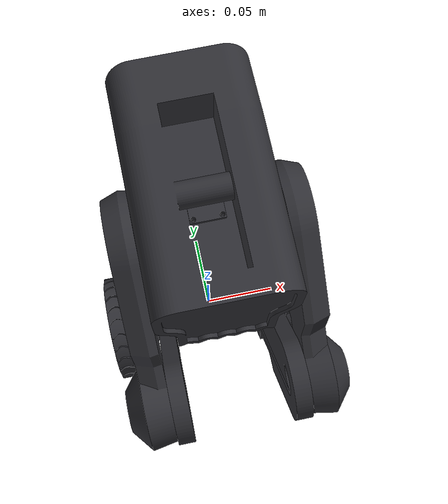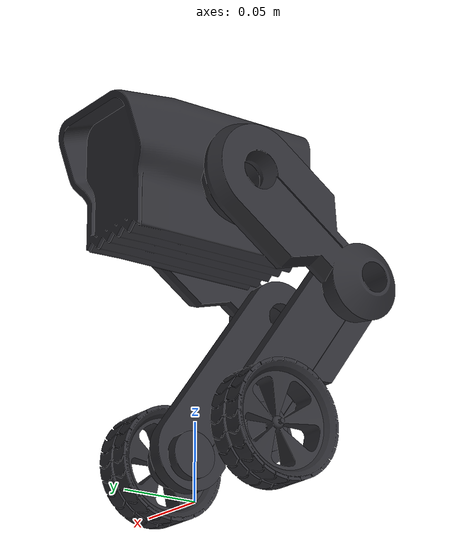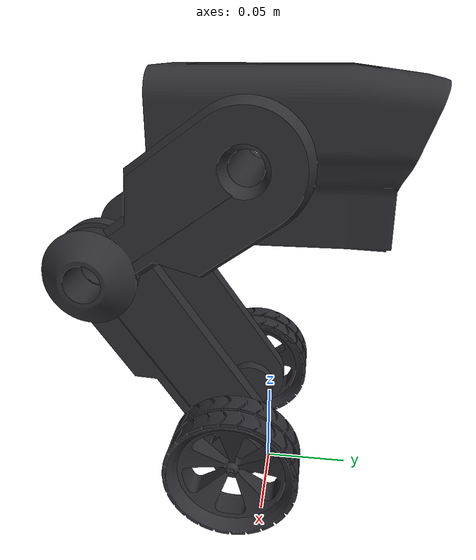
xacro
<?xml version="1.0" ?>
<robot name="Biped_bot_1" xmlns:xacro="http://www.ros.org/wiki/xacro">

<xacro:arg name="is_ignition" default="true"/>

<!-- Load Simulated or Real Hardware Interfaces -->
<xacro:arg name="is_sim" default="true"/>

<!-- Include Gazebo Parameters -->
<xacro:include filename="$(find bipedbot_description)/urdf/bipedbot_gazebo.xacro" />

<!-- Include ros2_control Plugins -->
<xacro:include filename="$(find bipedbot_description)/urdf/bipedbot_ros2_control.xacro" />

<!-- Greyish-black material for all visuals -->
<material name="grey_black">
  <color rgba="0.18 0.18 0.2 1.0"/>
</material>

<link name="base_footprint"/>

<!-- ========================= base_link ========================= -->
<link name="base_link">
  <inertial>
    <origin xyz="3.180981950978574e-05 0.0018828231312234408 0.20026420610273285" rpy="0 0 0"/>
    <mass value="0.6871364009577915"/>
    <inertia ixx="0.001278" iyy="0.000754" izz="0.001226" ixy="0.0" iyz="-9e-06" ixz="0.0"/>
  </inertial>
  <visual>
    <origin xyz="0 0 0" rpy="0 0 0"/>
    <geometry>
      <mesh filename="package://bipedbot_description/meshes/base_link.stl" scale="0.001 0.001 0.001"/>
    </geometry>
    <material name="grey_black"/>
  </visual>
  <collision>
    <origin xyz="0.0000 0.0107 0.1998" rpy="-1.5649 0.0000 3.1416"/>
    <geometry>
      <box size="0.0875 0.0907 0.1418"/>
    </geometry>
  </collision>
</link>

<!-- ========================= legs ========================= -->
<link name="right_top_leg_1">
  <inertial>
    <origin xyz="0.008146638140999245 -0.0344919738468972 -0.024151554062895847" rpy="0 0 0"/>
    <mass value="0.11765454158339926"/>
    <inertia ixx="0.000238" iyy="9.2e-05" izz="0.000152" ixy="5e-06" iyz="-8.2e-05" ixz="4e-06"/>
  </inertial>
  <visual>
    <origin xyz="-0.04 0.01 -0.199931" rpy="0 0 0"/>
    <geometry>
      <mesh filename="package://bipedbot_description/meshes/right_top_leg_1.stl" scale="0.001 0.001 0.001"/>
    </geometry>
    <material name="grey_black"/>
  </visual>
  <collision>
    <origin xyz="0.0125 -0.0365 -0.0256" rpy="-2.1817 0.0000 -3.1416"/>
    <geometry>
      <box size="0.0250 0.0668 0.1560"/>
    </geometry>
  </collision>
</link>

<link name="right_bottom_leg_1">
  <inertial>
    <origin xyz="-0.0049999999999989775 0.03342953324706922 -0.04524843328414291" rpy="0 0 0"/>
    <mass value="0.06694057104242657"/>
    <inertia ixx="0.000154" iyy="9.6e-05" izz="5.9e-05" ixy="0.0" iyz="6e-05" ixz="-0.0"/>
  </inertial>
  <visual>
    <origin xyz="-0.04 0.089867 -0.144007" rpy="0 0 0"/>
    <geometry>
      <mesh filename="package://bipedbot_description/meshes/right_bottom_leg_1.stl" scale="0.001 0.001 0.001"/>
    </geometry>
    <material name="grey_black"/>
  </visual>
  <collision>
    <origin xyz="-0.0050 0.0358 -0.0512" rpy="0.6109 0.0000 0.0000"/>
    <geometry>
      <box size="0.0100 0.0500 0.1750"/>
    </geometry>
  </collision>
</link>

<link name="left_top_leg_1">
  <inertial>
    <origin xyz="-0.008170600100975561 -0.03442394876428098 -0.024103922387621074" rpy="0 0 0"/>
    <mass value="0.11806434962739475"/>
    <inertia ixx="0.000239" iyy="9.3e-05" izz="0.000153" ixy="-5e-06" iyz="-8.3e-05" ixz="-4e-06"/>
  </inertial>
  <visual>
    <origin xyz="0.04 0.01 -0.199931" rpy="0 0 0"/>
    <geometry>
      <mesh filename="package://bipedbot_description/meshes/left_top_leg_1.stl" scale="0.001 0.001 0.001"/>
    </geometry>
    <material name="grey_black"/>
  </visual>
  <collision>
    <origin xyz="-0.0125 -0.0365 -0.0256" rpy="-2.1817 0.0000 -3.1416"/>
    <geometry>
      <box size="0.0250 0.0668 0.1560"/>
    </geometry>
  </collision>
</link>

<link name="left_bottom_leg_1">
  <inertial>
    <origin xyz="0.004999999999999165 0.0334295332470692 -0.04524843328414298" rpy="0 0 0"/>
    <mass value="0.06694057104242657"/>
    <inertia ixx="0.000154" iyy="9.6e-05" izz="5.9e-05" ixy="-0.0" iyz="6e-05" ixz="0.0"/>
  </inertial>
  <visual>
    <origin xyz="0.04 0.089867 -0.144007" rpy="0 0 0"/>
    <geometry>
      <mesh filename="package://bipedbot_description/meshes/left_bottom_leg_1.stl" scale="0.001 0.001 0.001"/>
    </geometry>
    <material name="grey_black"/>
  </visual>
  <collision>
    <origin xyz="0.0050 0.0358 -0.0512" rpy="0.6109 0.0000 0.0000"/>
    <geometry>
      <box size="0.0100 0.0500 0.1750"/>
    </geometry>
  </collision>
</link>

<!-- ========================= motors ========================= -->
<link name="right_motor_1">
  <inertial>
    <origin xyz="0.002611940298508038 -3.875925415914444e-07 -4.822695428494117e-07" rpy="0 0 0"/>
    <mass value="0.022590485913617148"/>
    <inertia ixx="3e-06" iyy="3e-06" izz="3e-06" ixy="0.0" iyz="-0.0" ixz="0.0"/>
  </inertial>
  <visual>
    <origin xyz="-0.035 0.015302 -0.037518" rpy="0 0 0"/>
    <geometry>
      <mesh filename="package://bipedbot_description/meshes/right_motor_1.stl" scale="0.001 0.001 0.001"/>
    </geometry>
    <material name="grey_black"/>
  </visual>
  <collision>
    <origin xyz="0.0100 0.0000 0.0000" rpy="1.5708 0.4303 -1.5708"/>
    <geometry>
      <box size="0.0300 0.0300 0.0450"/>
    </geometry>
  </collision>
</link>

<link name="left_motor_1">
  <inertial>
    <origin xyz="-0.002611940298508253 -3.875925402695851e-07 -4.822695418571499e-07" rpy="0 0 0"/>
    <mass value="0.022590485913617148"/>
    <inertia ixx="3e-06" iyy="3e-06" izz="3e-06" ixy="0.0" iyz="-0.0" ixz="0.0"/>
  </inertial>
  <visual>
    <origin xyz="0.035 0.015302 -0.037518" rpy="0 0 0"/>
    <geometry>
      <mesh filename="package://bipedbot_description/meshes/left_motor_1.stl" scale="0.001 0.001 0.001"/>
    </geometry>
    <material name="grey_black"/>
  </visual>
  <collision>
    <origin xyz="-0.0100 0.0000 0.0000" rpy="1.5708 -0.6891 -1.5708"/>
    <geometry>
      <box size="0.0300 0.0300 0.0450"/>
    </geometry>
  </collision>
</link>

<!-- ========================= wheels (no collision, tyres handle contact) ========================= -->
<link name="left_wheel_1">
  <inertial>
    <origin xyz="-3.5058995290215833e-10 -4.003821121052048e-07 -4.778944649383443e-07" rpy="0 0 0"/>
    <mass value="0.02988168724907574"/>
    <inertia ixx="2.1e-05" iyy="1.1e-05" izz="1.1e-05" ixy="0.0" iyz="0.0" ixz="-0.0"/>
  </inertial>
  <visual>
    <origin xyz="0.06 0.015302 -0.037518" rpy="0 0 0"/>
    <geometry>
      <mesh filename="package://bipedbot_description/meshes/left_wheel_1.stl" scale="0.001 0.001 0.001"/>
    </geometry>
    <material name="grey_black"/>
  </visual>
</link>

<link name="right_wheel_1">
  <inertial>
    <origin xyz="-3.5058860675674097e-10 -4.003821121121437e-07 -4.778944651673278e-07" rpy="0 0 0"/>
    <mass value="0.02988168724907574"/>
    <inertia ixx="2.1e-05" iyy="1.1e-05" izz="1.1e-05" ixy="0.0" iyz="0.0" ixz="-0.0"/>
  </inertial>
  <visual>
    <origin xyz="-0.06 0.015302 -0.037518" rpy="0 0 0"/>
    <geometry>
      <mesh filename="package://bipedbot_description/meshes/right_wheel_1.stl" scale="0.001 0.001 0.001"/>
    </geometry>
    <material name="grey_black"/>
  </visual>
</link>

<!-- ========================= IMU (no collision) ========================= -->
<link name="imu_link_1">
  <inertial>
    <origin xyz="-0.00800314775699511 0.005842843639794027 0.0010391859500072376" rpy="0 0 0"/>
    <mass value="0.0006222857790364956"/>
    <inertia ixx="0.0" iyy="0.0" izz="0.0" ixy="0.0" iyz="-0.0" ixz="0.0"/>
  </inertial>
  <visual>
    <origin xyz="-0.008 0.0055 -0.215" rpy="0 0 0"/>
    <geometry>
      <mesh filename="package://bipedbot_description/meshes/imu_link_1.stl" scale="0.001 0.001 0.001"/>
    </geometry>
    <material name="grey_black"/>
  </visual>
</link>

<!-- ========================= tyres (ground contact) ========================= -->
<link name="left_tyre_1">
  <inertial>
    <origin xyz="1.8586576635053198e-05 -3.879422003933569e-07 -4.817137699564267e-07" rpy="0 0 0"/>
    <mass value="0.02747331301180858"/>
    <inertia ixx="3.3e-05" iyy="1.8e-05" izz="1.8e-05" ixy="0.0" iyz="0.0" ixz="-0.0"/>
  </inertial>
  <visual>
    <origin xyz="0.06 0.015302 -0.037518" rpy="0 0 0"/>
    <geometry>
      <mesh filename="package://bipedbot_description/meshes/left_tyre_1.stl" scale="0.001 0.001 0.001"/>
    </geometry>
    <material name="grey_black"/>
  </visual>
  <collision>
    <origin xyz="0 0 0" rpy="0 1.5708 0"/>
    <geometry>
      <cylinder radius="0.037" length="0.0286"/>
    </geometry>
  </collision>
</link>

<link name="right_tyre_1">
  <inertial>
    <origin xyz="1.85865766363022e-05 -3.8794220039682636e-07 -4.817137701784713e-07" rpy="0 0 0"/>
    <mass value="0.02747331301180858"/>
    <inertia ixx="3.3e-05" iyy="1.8e-05" izz="1.8e-05" ixy="0.0" iyz="0.0" ixz="-0.0"/>
  </inertial>
  <visual>
    <origin xyz="-0.06 0.015302 -0.037518" rpy="0 0 0"/>
    <geometry>
      <mesh filename="package://bipedbot_description/meshes/right_tyre_1.stl" scale="0.001 0.001 0.001"/>
    </geometry>
    <material name="grey_black"/>
  </visual>
  <collision>
    <origin xyz="0 0 0" rpy="0 1.5708 0"/>
    <geometry>
      <cylinder radius="0.037" length="0.0286"/>
    </geometry>
  </collision>
</link>

<!-- ========================= joints ========================= -->
<!-- z was 0.033: wheel axle is 0.0375 above base_link and tyre radius is 0.037,
     so with z=0 the tyres sit on the ground. Verify in Gazebo. -->
<joint name="base_joint" type="fixed">
  <parent link="base_footprint"/>
  <child link="base_link" />
  <origin xyz="0 0 0" rpy="0 0 0"/>
</joint>

<!-- Leg joints: planar hip/knee, axes parallel to the wheel axle (x). Limits cover a hip height
     of about 0.09 .. 0.21 m (see analysis/leg_model.py); the controller restricts it further. -->
<joint name="right_top_leg_joint" type="revolute">
  <origin xyz="0.04 -0.01 0.199931" rpy="0 0 0"/>
  <parent link="base_link"/>
  <child link="right_top_leg_1"/>
  <axis xyz="-1.0 0.0 0.0"/>
  <limit lower="-0.70" upper="0.70" effort="2.0" velocity="3.0"/>
</joint>

<joint name="right_bottom_leg_joint" type="revolute">
  <origin xyz="0.0 -0.079867 -0.055924" rpy="0 0 0"/>
  <parent link="right_top_leg_1"/>
  <child link="right_bottom_leg_1"/>
  <axis xyz="1.0 0.0 -0.0"/>
  <limit lower="-0.85" upper="0.85" effort="2.0" velocity="3.0"/>
</joint>

<joint name="left_top_leg_joint" type="revolute">
  <origin xyz="-0.04 -0.01 0.199931" rpy="0 0 0"/>
  <parent link="base_link"/>
  <child link="left_top_leg_1"/>
  <axis xyz="-1.0 0.0 0.0"/>
  <limit lower="-0.70" upper="0.70" effort="2.0" velocity="3.0"/>
</joint>

<joint name="left_bottom_leg_joint" type="revolute">
  <origin xyz="0.0 -0.079867 -0.055924" rpy="0 0 0"/>
  <parent link="left_top_leg_1"/>
  <child link="left_bottom_leg_1"/>
  <axis xyz="-1.0 0.0 -0.0"/>
  <limit lower="-0.85" upper="0.85" effort="2.0" velocity="3.0"/>
</joint>

<joint name="right_motor_joint" type="fixed">
  <origin xyz="-0.005 0.074565 -0.106489" rpy="0 0 0"/>
  <parent link="right_bottom_leg_1"/>
  <child link="right_motor_1"/>
</joint>

<joint name="left_motor_joint" type="fixed">
  <origin xyz="0.005 0.074565 -0.106489" rpy="0 0 0"/>
  <parent link="left_bottom_leg_1"/>
  <child link="left_motor_1"/>
</joint>

<joint name="left_wheel_joint" type="continuous">
  <origin xyz="-0.025 0.0 0.0" rpy="0 0 0"/>
  <parent link="left_motor_1"/>
  <child link="left_wheel_1"/>
  <axis xyz="-1.0 -0.0 -0.0"/>
</joint>

<joint name="right_wheel_joint" type="continuous">
  <origin xyz="0.025 0.0 0.0" rpy="0 0 0"/>
  <parent link="right_motor_1"/>
  <child link="right_wheel_1"/>
  <axis xyz="1.0 0.0 -0.0"/>
</joint>

<joint name="imu_joint" type="fixed">
  <origin xyz="0.008 -0.0055 0.215" rpy="0 0 0"/>
  <parent link="base_link"/>
  <child link="imu_link_1"/>
</joint>

<joint name="left_tyre_joint" type="fixed">
  <origin xyz="0.0 0.0 0.0" rpy="0 0 0"/>
  <parent link="left_wheel_1"/>
  <child link="left_tyre_1"/>
</joint>

<joint name="right_tyre_joint" type="fixed">
  <origin xyz="0.0 0.0 0.0" rpy="0 0 0"/>
  <parent link="right_wheel_1"/>
  <child link="right_tyre_1"/>
</joint>

</robot>
